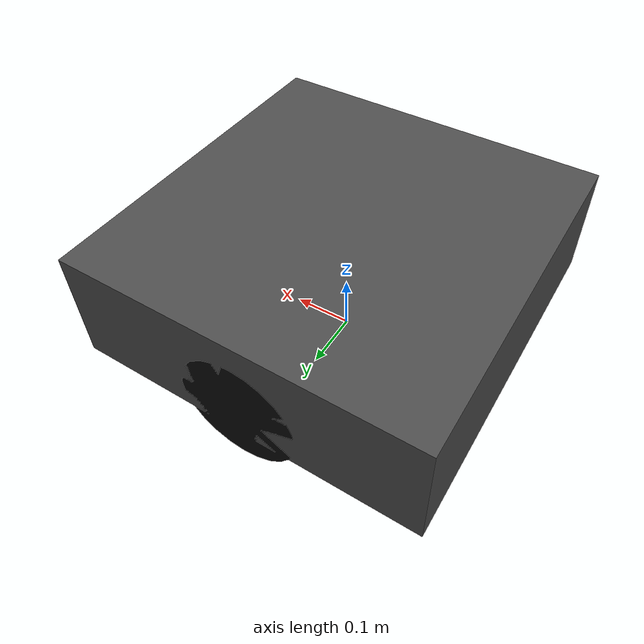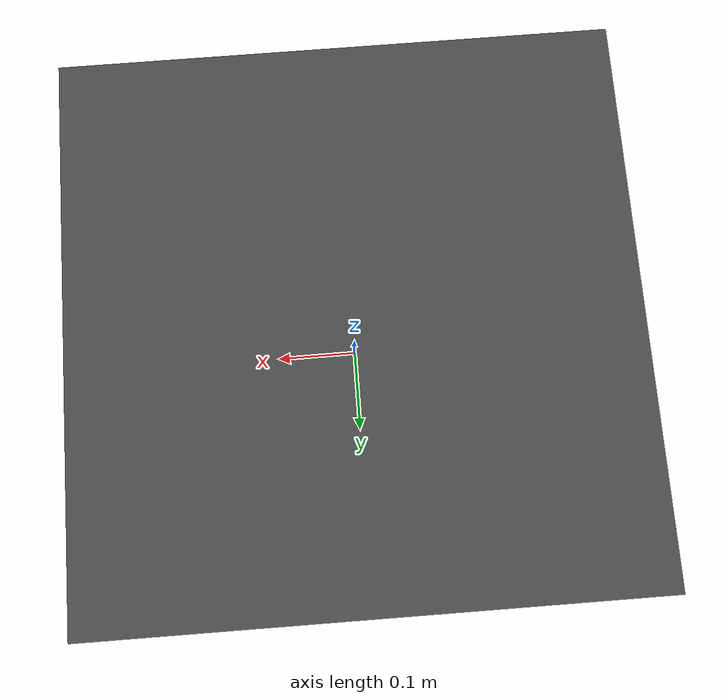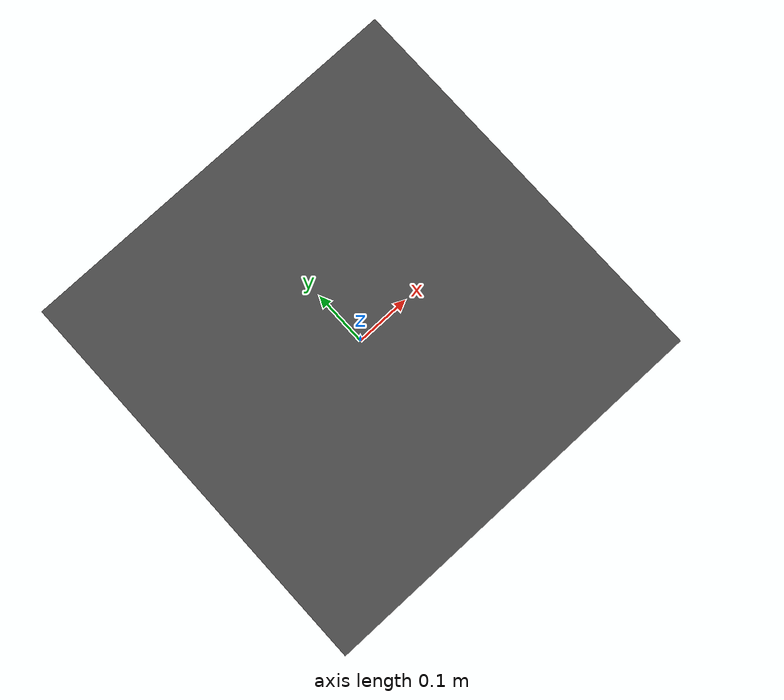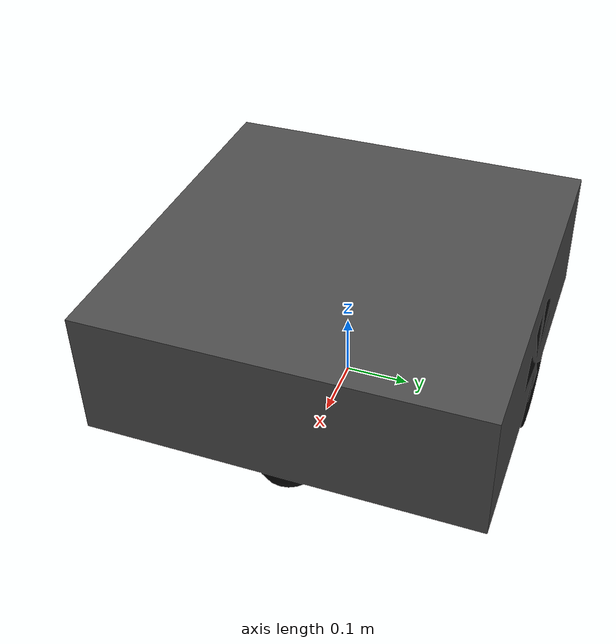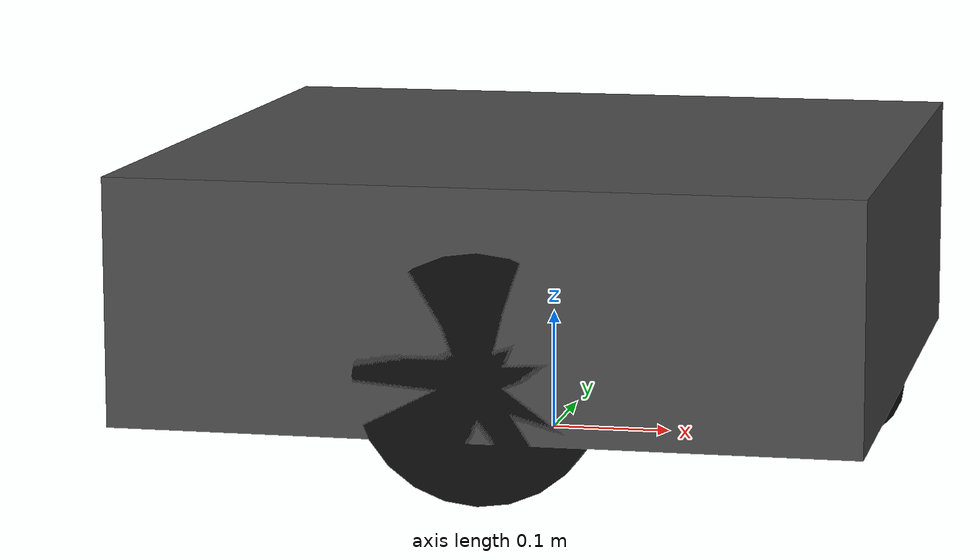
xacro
<?xml version="1.0"?>
<robot name="nhk27_placeholder" xmlns:xacro="http://www.ros.org/wiki/xacro">
  <xacro:property name="chassis_x" value="0.60"/>
  <xacro:property name="chassis_y" value="0.60"/>
  <xacro:property name="chassis_z" value="0.20"/>
  <xacro:property name="chassis_mass" value="15.0"/>
  <xacro:property name="chassis_clearance" value="0.05"/>  <!-- 車体下面と地面の隙間 -->
  <xacro:property name="chassis_center_z" value="${chassis_clearance + chassis_z/2}"/>

  <xacro:property name="wheel_radius" value="0.10"/>
  <xacro:property name="wheel_width" value="0.05"/>
  <xacro:property name="wheel_mass" value="1.0"/>
  <xacro:property name="wheel_separation" value="0.55"/>
  <xacro:property name="wheel_x_offset" value="0.0"/>
  <xacro:property name="wheel_z_rel_chassis" value="${wheel_radius - chassis_center_z}"/>

  <xacro:property name="caster_radius" value="0.05"/>
  <xacro:property name="caster_z_rel_chassis" value="${caster_radius - chassis_center_z}"/>

  <material name="body_gray">
    <color rgba="0.3 0.3 0.3 1.0"/>
  </material>
  <material name="wheel_black">
    <color rgba="0.05 0.05 0.05 1.0"/>
  </material>

  <link name="base_link"/>

  <joint name="base_to_chassis" type="fixed">
    <parent link="base_link"/>
    <child link="chassis_link"/>
    <origin xyz="0 0 ${chassis_center_z}" rpy="0 0 0"/>
  </joint>

  <link name="chassis_link">
    <visual>
      <geometry>
        <box size="${chassis_x} ${chassis_y} ${chassis_z}"/>
      </geometry>
      <material name="body_gray"/>
    </visual>
    <collision>
      <geometry>
        <box size="${chassis_x} ${chassis_y} ${chassis_z}"/>
      </geometry>
    </collision>
    <inertial>
      <mass value="${chassis_mass}"/>
      <inertia ixx="0.30" ixy="0" ixz="0" iyy="0.30" iyz="0" izz="0.50"/>
    </inertial>
  </link>

  <xacro:macro name="wheel" params="prefix y_reflect">
    <link name="${prefix}_wheel_link">
      <visual>
        <origin xyz="0 0 0" rpy="1.5707963 0 0"/>
        <geometry>
          <cylinder radius="${wheel_radius}" length="${wheel_width}"/>
        </geometry>
        <material name="wheel_black"/>
      </visual>
      <collision>
        <origin xyz="0 0 0" rpy="1.5707963 0 0"/>
        <geometry>
          <cylinder radius="${wheel_radius}" length="${wheel_width}"/>
        </geometry>
      </collision>
      <inertial>
        <mass value="${wheel_mass}"/>
        <inertia ixx="0.01" ixy="0" ixz="0" iyy="0.01" iyz="0" izz="0.01"/>
      </inertial>
    </link>
    <joint name="${prefix}_wheel_joint" type="continuous">
      <parent link="chassis_link"/>
      <child link="${prefix}_wheel_link"/>
      <origin xyz="${wheel_x_offset} ${y_reflect * wheel_separation/2} ${wheel_z_rel_chassis}" rpy="0 0 0"/>
      <axis xyz="0 1 0"/>
    </joint>
  </xacro:macro>
  <xacro:wheel prefix="left" y_reflect="1"/>
  <xacro:wheel prefix="right" y_reflect="-1"/>

  <xacro:macro name="caster" params="prefix x_offset">
    <link name="${prefix}_caster_link">
      <visual>
        <geometry>
          <sphere radius="${caster_radius}"/>
        </geometry>
        <material name="wheel_black"/>
      </visual>
      <collision>
        <geometry>
          <sphere radius="${caster_radius}"/>
        </geometry>
      </collision>
      <inertial>
        <mass value="0.3"/>
        <inertia ixx="0.001" ixy="0" ixz="0" iyy="0.001" iyz="0" izz="0.001"/>
      </inertial>
    </link>
    <joint name="${prefix}_caster_joint" type="fixed">
      <parent link="chassis_link"/>
      <child link="${prefix}_caster_link"/>
      <origin xyz="${x_offset} 0 ${caster_z_rel_chassis}" rpy="0 0 0"/>
    </joint>
  </xacro:macro>
  <xacro:caster prefix="front" x_offset="${chassis_x/2 - caster_radius}"/>
  <xacro:caster prefix="rear" x_offset="${-(chassis_x/2 - caster_radius)}"/>

  <gazebo>
    <plugin filename="gz-sim-diff-drive-system" name="gz::sim::systems::DiffDrive">
      <left_joint>left_wheel_joint</left_joint>
      <right_joint>right_wheel_joint</right_joint>
      <wheel_separation>${wheel_separation}</wheel_separation>
      <wheel_radius>${wheel_radius}</wheel_radius>
      <max_linear_acceleration>2.0</max_linear_acceleration>
      <topic>cmd_vel</topic>
      <odom_topic>odom</odom_topic>
      <tf_topic>tf</tf_topic>
      <frame_id>odom</frame_id>
      <child_frame_id>base_link</child_frame_id>
    </plugin>
    <plugin filename="gz-sim-joint-state-publisher-system" name="gz::sim::systems::JointStatePublisher"/>
    <plugin filename="gz-sim-pose-publisher-system" name="gz::sim::systems::PosePublisher">
      <publish_link_pose>true</publish_link_pose>
      <use_pose_vector_msg>true</use_pose_vector_msg>
      <static_publisher>true</static_publisher>
      <static_update_frequency>10</static_update_frequency>
    </plugin>
  </gazebo>

  <gazebo reference="chassis_link">
    <material>Gazebo/Grey</material>
  </gazebo>
  <gazebo reference="left_wheel_link">
    <material>Gazebo/Black</material>
    <mu1>1.0</mu1>
    <mu2>1.0</mu2>
  </gazebo>
  <gazebo reference="right_wheel_link">
    <material>Gazebo/Black</material>
    <mu1>1.0</mu1>
    <mu2>1.0</mu2>
  </gazebo>
</robot>
